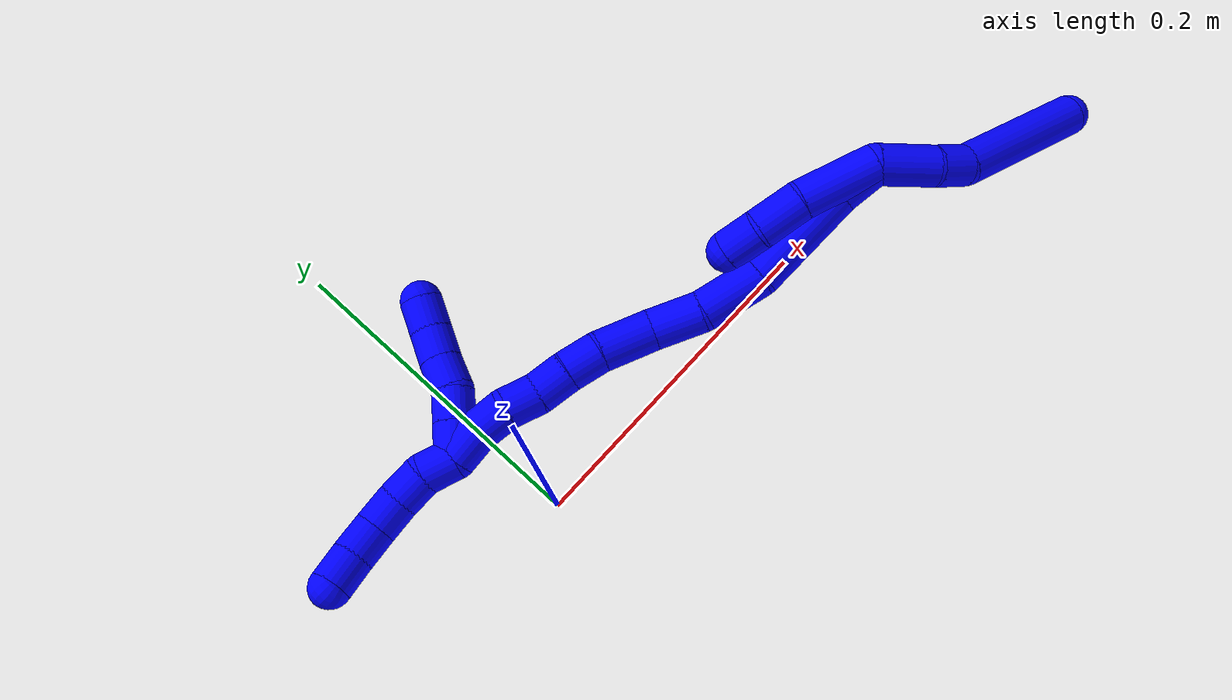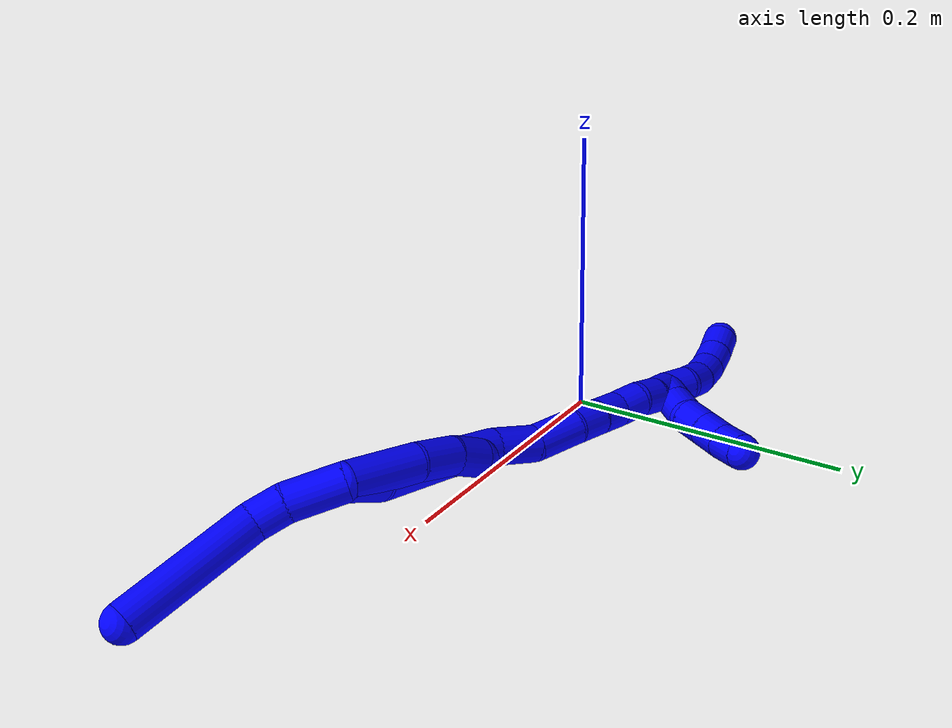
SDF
<sdf version="1.7">
 <world name="default">
  <model name="1">
   <static>0</static>
   <link name="1">
    <collision name="collision-cylinder-e_1_2_8">
     <pose>0.008578 -0.012638 0.010676 0.869338 0.478348 0.225463</pose>
     <geometry><cylinder><radius>0.0125</radius><length>0.037272</length></cylinder></geometry>
     <surface>
      <friction><ode><mu>1.16</mu><mu2>1.16</mu2><slip1>0</slip1><slip2>0</slip2></ode></friction>
      <contact><ode><kp>1e+06</kp><kd>1</kd><max_vel>0</max_vel><min_depth>0.001</min_depth></ode></contact>
     </surface>
    </collision>
    <visual name="visual-cylinder-e_1_2_8">
     <pose>0.008578 -0.012638 0.010676 0.869338 0.478348 0.225463</pose>
     <geometry><cylinder><radius>0.0125</radius><length>0.037272</length></cylinder></geometry>
     <material><ambient>0 0 1 1</ambient></material>
    </visual>
    <collision name="collision-cylinder-e_2_8_9">
     <pose>0.023897 -0.031507 0.027026 0.832198 0.674689 0.307548</pose>
     <geometry><cylinder><radius>0.0125</radius><length>0.021581</length></cylinder></geometry>
     <surface>
      <friction><ode><mu>1.16</mu><mu2>1.16</mu2><slip1>0</slip1><slip2>0</slip2></ode></friction>
      <contact><ode><kp>1e+06</kp><kd>1</kd><max_vel>0</max_vel><min_depth>0.001</min_depth></ode></contact>
     </surface>
    </collision>
    <visual name="visual-cylinder-e_2_8_9">
     <pose>0.023897 -0.031507 0.027026 0.832198 0.674689 0.307548</pose>
     <geometry><cylinder><radius>0.0125</radius><length>0.021581</length></cylinder></geometry>
     <material><ambient>0 0 1 1</ambient></material>
    </visual>
    <collision name="collision-cylinder-e_3_9_6">
     <pose>0.061929 -0.050255 0.063376 0.387422 0.75683 0.155671</pose>
     <geometry><cylinder><radius>0.0125</radius><length>0.091147</length></cylinder></geometry>
     <surface>
      <friction><ode><mu>1.16</mu><mu2>1.16</mu2><slip1>0</slip1><slip2>0</slip2></ode></friction>
      <contact><ode><kp>1e+06</kp><kd>1</kd><max_vel>0</max_vel><min_depth>0.001</min_depth></ode></contact>
     </surface>
    </collision>
    <visual name="visual-cylinder-e_3_9_6">
     <pose>0.061929 -0.050255 0.063376 0.387422 0.75683 0.155671</pose>
     <geometry><cylinder><radius>0.0125</radius><length>0.091147</length></cylinder></geometry>
     <material><ambient>0 0 1 1</ambient></material>
    </visual>
    <collision name="collision-cylinder-e_1_2_10">
     <pose>-0.008639 0.007843 -0.021275 -2.78839 -0.364004 1.60156</pose>
     <geometry><cylinder><radius>0.0125</radius><length>0.048529</length></cylinder></geometry>
     <surface>
      <friction><ode><mu>1.16</mu><mu2>1.16</mu2><slip1>0</slip1><slip2>0</slip2></ode></friction>
      <contact><ode><kp>1e+06</kp><kd>1</kd><max_vel>0</max_vel><min_depth>0.001</min_depth></ode></contact>
     </surface>
    </collision>
    <visual name="visual-cylinder-e_1_2_10">
     <pose>-0.008639 0.007843 -0.021275 -2.78839 -0.364004 1.60156</pose>
     <geometry><cylinder><radius>0.0125</radius><length>0.048529</length></cylinder></geometry>
     <material><ambient>0 0 1 1</ambient></material>
    </visual>
    <collision name="collision-cylinder-e_2_10_11">
     <pose>-0.021137 0.018476 -0.056361 -2.9423 -0.267412 1.86323</pose>
     <geometry><cylinder><radius>0.0125</radius><length>0.029217</length></cylinder></geometry>
     <surface>
      <friction><ode><mu>1.16</mu><mu2>1.16</mu2><slip1>0</slip1><slip2>0</slip2></ode></friction>
      <contact><ode><kp>1e+06</kp><kd>1</kd><max_vel>0</max_vel><min_depth>0.001</min_depth></ode></contact>
     </surface>
    </collision>
    <visual name="visual-cylinder-e_2_10_11">
     <pose>-0.021137 0.018476 -0.056361 -2.9423 -0.267412 1.86323</pose>
     <geometry><cylinder><radius>0.0125</radius><length>0.029217</length></cylinder></geometry>
     <material><ambient>0 0 1 1</ambient></material>
    </visual>
    <collision name="collision-cylinder-e_3_11_5">
     <pose>-0.025585 0.023534 -0.081048 -2.936 -0.052791 0.501107</pose>
     <geometry><cylinder><radius>0.0125</radius><length>0.022254</length></cylinder></geometry>
     <surface>
      <friction><ode><mu>1.16</mu><mu2>1.16</mu2><slip1>0</slip1><slip2>0</slip2></ode></friction>
      <contact><ode><kp>1e+06</kp><kd>1</kd><max_vel>0</max_vel><min_depth>0.001</min_depth></ode></contact>
     </surface>
    </collision>
    <visual name="visual-cylinder-e_3_11_5">
     <pose>-0.025585 0.023534 -0.081048 -2.936 -0.052791 0.501107</pose>
     <geometry><cylinder><radius>0.0125</radius><length>0.022254</length></cylinder></geometry>
     <material><ambient>0 0 1 1</ambient></material>
    </visual>
    <collision name="collision-cylinder-e_1_2_12">
     <pose>-0.00139 0.001599 -0.013249 -3.02148 -0.10378 1.42481</pose>
     <geometry><cylinder><radius>0.0125</radius><length>0.026835</length></cylinder></geometry>
     <surface>
      <friction><ode><mu>1.16</mu><mu2>1.16</mu2><slip1>0</slip1><slip2>0</slip2></ode></friction>
      <contact><ode><kp>1e+06</kp><kd>1</kd><max_vel>0</max_vel><min_depth>0.001</min_depth></ode></contact>
     </surface>
    </collision>
    <visual name="visual-cylinder-e_1_2_12">
     <pose>-0.00139 0.001599 -0.013249 -3.02148 -0.10378 1.42481</pose>
     <geometry><cylinder><radius>0.0125</radius><length>0.026835</length></cylinder></geometry>
     <material><ambient>0 0 1 1</ambient></material>
    </visual>
    <collision name="collision-cylinder-e_2_12_13">
     <pose>-0.012767 0.002751 -0.058053 3.12741 -0.306486 -3.04984</pose>
     <geometry><cylinder><radius>0.0125</radius><length>0.066202</length></cylinder></geometry>
     <surface>
      <friction><ode><mu>1.16</mu><mu2>1.16</mu2><slip1>0</slip1><slip2>0</slip2></ode></friction>
      <contact><ode><kp>1e+06</kp><kd>1</kd><max_vel>0</max_vel><min_depth>0.001</min_depth></ode></contact>
     </surface>
    </collision>
    <visual name="visual-cylinder-e_2_12_13">
     <pose>-0.012767 0.002751 -0.058053 3.12741 -0.306486 -3.04984</pose>
     <geometry><cylinder><radius>0.0125</radius><length>0.066202</length></cylinder></geometry>
     <material><ambient>0 0 1 1</ambient></material>
    </visual>
    <collision name="collision-cylinder-e_3_13_14">
     <pose>-0.029152 0.006927 -0.107502 -2.8887 -0.33326 1.84715</pose>
     <geometry><cylinder><radius>0.0125</radius><length>0.039115</length></cylinder></geometry>
     <surface>
      <friction><ode><mu>1.16</mu><mu2>1.16</mu2><slip1>0</slip1><slip2>0</slip2></ode></friction>
      <contact><ode><kp>1e+06</kp><kd>1</kd><max_vel>0</max_vel><min_depth>0.001</min_depth></ode></contact>
     </surface>
    </collision>
    <visual name="visual-cylinder-e_3_13_14">
     <pose>-0.029152 0.006927 -0.107502 -2.8887 -0.33326 1.84715</pose>
     <geometry><cylinder><radius>0.0125</radius><length>0.039115</length></cylinder></geometry>
     <material><ambient>0 0 1 1</ambient></material>
    </visual>
    <collision name="collision-cylinder-e_4_14_15">
     <pose>-0.038846 0.018278 -0.139195 -2.68803 -0.211567 0.862526</pose>
     <geometry><cylinder><radius>0.0125</radius><length>0.031401</length></cylinder></geometry>
     <surface>
      <friction><ode><mu>1.16</mu><mu2>1.16</mu2><slip1>0</slip1><slip2>0</slip2></ode></friction>
      <contact><ode><kp>1e+06</kp><kd>1</kd><max_vel>0</max_vel><min_depth>0.001</min_depth></ode></contact>
     </surface>
    </collision>
    <visual name="visual-cylinder-e_4_14_15">
     <pose>-0.038846 0.018278 -0.139195 -2.68803 -0.211567 0.862526</pose>
     <geometry><cylinder><radius>0.0125</radius><length>0.031401</length></cylinder></geometry>
     <material><ambient>0 0 1 1</ambient></material>
    </visual>
    <collision name="collision-cylinder-e_5_15_16">
     <pose>-0.050197 0.031234 -0.16648 -2.70885 -0.496746 1.71332</pose>
     <geometry><cylinder><radius>0.0125</radius><length>0.033798</length></cylinder></geometry>
     <surface>
      <friction><ode><mu>1.16</mu><mu2>1.16</mu2><slip1>0</slip1><slip2>0</slip2></ode></friction>
      <contact><ode><kp>1e+06</kp><kd>1</kd><max_vel>0</max_vel><min_depth>0.001</min_depth></ode></contact>
     </surface>
    </collision>
    <visual name="visual-cylinder-e_5_15_16">
     <pose>-0.050197 0.031234 -0.16648 -2.70885 -0.496746 1.71332</pose>
     <geometry><cylinder><radius>0.0125</radius><length>0.033798</length></cylinder></geometry>
     <material><ambient>0 0 1 1</ambient></material>
    </visual>
    <collision name="collision-cylinder-e_6_16_17">
     <pose>-0.062778 0.03996 -0.189446 -2.88418 -0.432695 2.07724</pose>
     <geometry><cylinder><radius>0.0125</radius><length>0.021594</length></cylinder></geometry>
     <surface>
      <friction><ode><mu>1.16</mu><mu2>1.16</mu2><slip1>0</slip1><slip2>0</slip2></ode></friction>
      <contact><ode><kp>1e+06</kp><kd>1</kd><max_vel>0</max_vel><min_depth>0.001</min_depth></ode></contact>
     </surface>
    </collision>
    <visual name="visual-cylinder-e_6_16_17">
     <pose>-0.062778 0.03996 -0.189446 -2.88418 -0.432695 2.07724</pose>
     <geometry><cylinder><radius>0.0125</radius><length>0.021594</length></cylinder></geometry>
     <material><ambient>0 0 1 1</ambient></material>
    </visual>
    <collision name="collision-cylinder-e_7_17_18">
     <pose>-0.071358 0.043991 -0.20851 -2.98268 -0.395484 2.38505</pose>
     <geometry><cylinder><radius>0.0125</radius><length>0.02104</length></cylinder></geometry>
     <surface>
      <friction><ode><mu>1.16</mu><mu2>1.16</mu2><slip1>0</slip1><slip2>0</slip2></ode></friction>
      <contact><ode><kp>1e+06</kp><kd>1</kd><max_vel>0</max_vel><min_depth>0.001</min_depth></ode></contact>
     </surface>
    </collision>
    <visual name="visual-cylinder-e_7_17_18">
     <pose>-0.071358 0.043991 -0.20851 -2.98268 -0.395484 2.38505</pose>
     <geometry><cylinder><radius>0.0125</radius><length>0.02104</length></cylinder></geometry>
     <material><ambient>0 0 1 1</ambient></material>
    </visual>
    <collision name="collision-cylinder-e_8_18_19">
     <pose>-0.080274 0.048716 -0.226239 -2.76839 -0.507521 1.88311</pose>
     <geometry><cylinder><radius>0.0125</radius><length>0.020012</length></cylinder></geometry>
     <surface>
      <friction><ode><mu>1.16</mu><mu2>1.16</mu2><slip1>0</slip1><slip2>0</slip2></ode></friction>
      <contact><ode><kp>1e+06</kp><kd>1</kd><max_vel>0</max_vel><min_depth>0.001</min_depth></ode></contact>
     </surface>
    </collision>
    <visual name="visual-cylinder-e_8_18_19">
     <pose>-0.080274 0.048716 -0.226239 -2.76839 -0.507521 1.88311</pose>
     <geometry><cylinder><radius>0.0125</radius><length>0.020012</length></cylinder></geometry>
     <material><ambient>0 0 1 1</ambient></material>
    </visual>
    <collision name="collision-cylinder-e_9_19_20">
     <pose>-0.088116 0.053129 -0.24385 -3.01292 -0.302498 2.34174</pose>
     <geometry><cylinder><radius>0.0125</radius><length>0.020003</length></cylinder></geometry>
     <surface>
      <friction><ode><mu>1.16</mu><mu2>1.16</mu2><slip1>0</slip1><slip2>0</slip2></ode></friction>
      <contact><ode><kp>1e+06</kp><kd>1</kd><max_vel>0</max_vel><min_depth>0.001</min_depth></ode></contact>
     </surface>
    </collision>
    <visual name="visual-cylinder-e_9_19_20">
     <pose>-0.088116 0.053129 -0.24385 -3.01292 -0.302498 2.34174</pose>
     <geometry><cylinder><radius>0.0125</radius><length>0.020003</length></cylinder></geometry>
     <material><ambient>0 0 1 1</ambient></material>
    </visual>
    <collision name="collision-cylinder-e_10_20_1">
     <pose>-0.094437 0.05347 -0.262702 3.04765 -0.340691 -2.60809</pose>
     <geometry><cylinder><radius>0.0125</radius><length>0.02</length></cylinder></geometry>
     <surface>
      <friction><ode><mu>1.16</mu><mu2>1.16</mu2><slip1>0</slip1><slip2>0</slip2></ode></friction>
      <contact><ode><kp>1e+06</kp><kd>1</kd><max_vel>0</max_vel><min_depth>0.001</min_depth></ode></contact>
     </surface>
    </collision>
    <visual name="visual-cylinder-e_10_20_1">
     <pose>-0.094437 0.05347 -0.262702 3.04765 -0.340691 -2.60809</pose>
     <geometry><cylinder><radius>0.0125</radius><length>0.02</length></cylinder></geometry>
     <material><ambient>0 0 1 1</ambient></material>
    </visual>
    <collision name="collision-cylinder-e_1_1_21">
     <pose>-0.10145 0.055727 -0.280842 -2.79714 -0.375902 1.65997</pose>
     <geometry><cylinder><radius>0.0125</radius><length>0.02</length></cylinder></geometry>
     <surface>
      <friction><ode><mu>1.16</mu><mu2>1.16</mu2><slip1>0</slip1><slip2>0</slip2></ode></friction>
      <contact><ode><kp>1e+06</kp><kd>1</kd><max_vel>0</max_vel><min_depth>0.001</min_depth></ode></contact>
     </surface>
    </collision>
    <visual name="visual-cylinder-e_1_1_21">
     <pose>-0.10145 0.055727 -0.280842 -2.79714 -0.375902 1.65997</pose>
     <geometry><cylinder><radius>0.0125</radius><length>0.02</length></cylinder></geometry>
     <material><ambient>0 0 1 1</ambient></material>
    </visual>
    <collision name="collision-cylinder-e_2_21_22">
     <pose>-0.108591 0.058739 -0.298975 3.12776 -0.35438 -3.06439</pose>
     <geometry><cylinder><radius>0.0125</radius><length>0.02</length></cylinder></geometry>
     <surface>
      <friction><ode><mu>1.16</mu><mu2>1.16</mu2><slip1>0</slip1><slip2>0</slip2></ode></friction>
      <contact><ode><kp>1e+06</kp><kd>1</kd><max_vel>0</max_vel><min_depth>0.001</min_depth></ode></contact>
     </surface>
    </collision>
    <visual name="visual-cylinder-e_2_21_22">
     <pose>-0.108591 0.058739 -0.298975 3.12776 -0.35438 -3.06439</pose>
     <geometry><cylinder><radius>0.0125</radius><length>0.02</length></cylinder></geometry>
     <material><ambient>0 0 1 1</ambient></material>
    </visual>
    <collision name="collision-cylinder-e_3_22_23">
     <pose>-0.117274 0.057457 -0.316808 3.00624 -0.548414 -2.66869</pose>
     <geometry><cylinder><radius>0.0125</radius><length>0.02</length></cylinder></geometry>
     <surface>
      <friction><ode><mu>1.16</mu><mu2>1.16</mu2><slip1>0</slip1><slip2>0</slip2></ode></friction>
      <contact><ode><kp>1e+06</kp><kd>1</kd><max_vel>0</max_vel><min_depth>0.001</min_depth></ode></contact>
     </surface>
    </collision>
    <visual name="visual-cylinder-e_3_22_23">
     <pose>-0.117274 0.057457 -0.316808 3.00624 -0.548414 -2.66869</pose>
     <geometry><cylinder><radius>0.0125</radius><length>0.02</length></cylinder></geometry>
     <material><ambient>0 0 1 1</ambient></material>
    </visual>
    <collision name="collision-cylinder-e_4_23_24">
     <pose>-0.128963 0.054811 -0.332736 2.94414 -0.704314 -2.61503</pose>
     <geometry><cylinder><radius>0.0125</radius><length>0.02</length></cylinder></geometry>
     <surface>
      <friction><ode><mu>1.16</mu><mu2>1.16</mu2><slip1>0</slip1><slip2>0</slip2></ode></friction>
      <contact><ode><kp>1e+06</kp><kd>1</kd><max_vel>0</max_vel><min_depth>0.001</min_depth></ode></contact>
     </surface>
    </collision>
    <visual name="visual-cylinder-e_4_23_24">
     <pose>-0.128963 0.054811 -0.332736 2.94414 -0.704314 -2.61503</pose>
     <geometry><cylinder><radius>0.0125</radius><length>0.02</length></cylinder></geometry>
     <material><ambient>0 0 1 1</ambient></material>
    </visual>
    <collision name="collision-cylinder-e_5_24_4">
     <pose>-0.142505 0.051451 -0.347033 2.8748 -0.784792 -2.51449</pose>
     <geometry><cylinder><radius>0.0125</radius><length>0.02</length></cylinder></geometry>
     <surface>
      <friction><ode><mu>1.16</mu><mu2>1.16</mu2><slip1>0</slip1><slip2>0</slip2></ode></friction>
      <contact><ode><kp>1e+06</kp><kd>1</kd><max_vel>0</max_vel><min_depth>0.001</min_depth></ode></contact>
     </surface>
    </collision>
    <visual name="visual-cylinder-e_5_24_4">
     <pose>-0.142505 0.051451 -0.347033 2.8748 -0.784792 -2.51449</pose>
     <geometry><cylinder><radius>0.0125</radius><length>0.02</length></cylinder></geometry>
     <material><ambient>0 0 1 1</ambient></material>
    </visual>
    <collision name="collision-cylinder-e_1_1_25">
     <pose>-0.092956 0.059907 -0.267274 -0.989307 0.503245 -0.275561</pose>
     <geometry><cylinder><radius>0.0125</radius><length>0.02</length></cylinder></geometry>
     <surface>
      <friction><ode><mu>1.16</mu><mu2>1.16</mu2><slip1>0</slip1><slip2>0</slip2></ode></friction>
      <contact><ode><kp>1e+06</kp><kd>1</kd><max_vel>0</max_vel><min_depth>0.001</min_depth></ode></contact>
     </surface>
    </collision>
    <visual name="visual-cylinder-e_1_1_25">
     <pose>-0.092956 0.059907 -0.267274 -0.989307 0.503245 -0.275561</pose>
     <geometry><cylinder><radius>0.0125</radius><length>0.02</length></cylinder></geometry>
     <material><ambient>0 0 1 1</ambient></material>
    </visual>
    <collision name="collision-cylinder-e_2_25_26">
     <pose>-0.083412 0.074652 -0.25771 -1.00136 0.491652 -0.272874</pose>
     <geometry><cylinder><radius>0.0125</radius><length>0.02</length></cylinder></geometry>
     <surface>
      <friction><ode><mu>1.16</mu><mu2>1.16</mu2><slip1>0</slip1><slip2>0</slip2></ode></friction>
      <contact><ode><kp>1e+06</kp><kd>1</kd><max_vel>0</max_vel><min_depth>0.001</min_depth></ode></contact>
     </surface>
    </collision>
    <visual name="visual-cylinder-e_2_25_26">
     <pose>-0.083412 0.074652 -0.25771 -1.00136 0.491652 -0.272874</pose>
     <geometry><cylinder><radius>0.0125</radius><length>0.02</length></cylinder></geometry>
     <material><ambient>0 0 1 1</ambient></material>
    </visual>
    <collision name="collision-cylinder-e_3_26_27">
     <pose>-0.074568 0.090993 -0.25109 -1.36444 0.425049 -0.347051</pose>
     <geometry><cylinder><radius>0.0125</radius><length>0.02</length></cylinder></geometry>
     <surface>
      <friction><ode><mu>1.16</mu><mu2>1.16</mu2><slip1>0</slip1><slip2>0</slip2></ode></friction>
      <contact><ode><kp>1e+06</kp><kd>1</kd><max_vel>0</max_vel><min_depth>0.001</min_depth></ode></contact>
     </surface>
    </collision>
    <visual name="visual-cylinder-e_3_26_27">
     <pose>-0.074568 0.090993 -0.25109 -1.36444 0.425049 -0.347051</pose>
     <geometry><cylinder><radius>0.0125</radius><length>0.02</length></cylinder></geometry>
     <material><ambient>0 0 1 1</ambient></material>
    </visual>
    <collision name="collision-cylinder-e_4_27_28">
     <pose>-0.066533 0.108685 -0.246449 -1.26461 0.401882 -0.29628</pose>
     <geometry><cylinder><radius>0.0125</radius><length>0.02</length></cylinder></geometry>
     <surface>
      <friction><ode><mu>1.16</mu><mu2>1.16</mu2><slip1>0</slip1><slip2>0</slip2></ode></friction>
      <contact><ode><kp>1e+06</kp><kd>1</kd><max_vel>0</max_vel><min_depth>0.001</min_depth></ode></contact>
     </surface>
    </collision>
    <visual name="visual-cylinder-e_4_27_28">
     <pose>-0.066533 0.108685 -0.246449 -1.26461 0.401882 -0.29628</pose>
     <geometry><cylinder><radius>0.0125</radius><length>0.02</length></cylinder></geometry>
     <material><ambient>0 0 1 1</ambient></material>
    </visual>
    <collision name="collision-cylinder-e_5_28_3">
     <pose>-0.059553 0.126393 -0.240389 -1.21826 0.311876 -0.218481</pose>
     <geometry><cylinder><radius>0.0125</radius><length>0.02</length></cylinder></geometry>
     <surface>
      <friction><ode><mu>1.16</mu><mu2>1.16</mu2><slip1>0</slip1><slip2>0</slip2></ode></friction>
      <contact><ode><kp>1e+06</kp><kd>1</kd><max_vel>0</max_vel><min_depth>0.001</min_depth></ode></contact>
     </surface>
    </collision>
    <visual name="visual-cylinder-e_5_28_3">
     <pose>-0.059553 0.126393 -0.240389 -1.21826 0.311876 -0.218481</pose>
     <geometry><cylinder><radius>0.0125</radius><length>0.02</length></cylinder></geometry>
     <material><ambient>0 0 1 1</ambient></material>
    </visual>
    <collision name="collision-sphere-3">
     <pose>-0.056484 0.135325 -0.237103 0 -0 0</pose>
     <geometry><sphere><radius>0.0125</radius></sphere></geometry>
     <surface>
      <friction><ode><mu>1.16</mu><mu2>1.16</mu2><slip1>0</slip1><slip2>0</slip2></ode></friction>
      <contact><ode><kp>1e+06</kp><kd>1</kd><max_vel>0</max_vel><min_depth>0.001</min_depth></ode></contact>
     </surface>
    </collision>
    <visual name="visual-sphere-3">
     <pose>-0.056484 0.135325 -0.237103 0 -0 0</pose>
     <geometry><sphere><radius>0.0125</radius></sphere></geometry>
     <material><ambient>0 0 1 1</ambient></material>
    </visual>
    <collision name="collision-sphere-28">
     <pose>-0.062621 0.11746 -0.243675 0 -0 0</pose>
     <geometry><sphere><radius>0.0125</radius></sphere></geometry>
     <surface>
      <friction><ode><mu>1.16</mu><mu2>1.16</mu2><slip1>0</slip1><slip2>0</slip2></ode></friction>
      <contact><ode><kp>1e+06</kp><kd>1</kd><max_vel>0</max_vel><min_depth>0.001</min_depth></ode></contact>
     </surface>
    </collision>
    <visual name="visual-sphere-28">
     <pose>-0.062621 0.11746 -0.243675 0 -0 0</pose>
     <geometry><sphere><radius>0.0125</radius></sphere></geometry>
     <material><ambient>0 0 1 1</ambient></material>
    </visual>
    <collision name="collision-sphere-27">
     <pose>-0.070444 0.09991 -0.249223 0 -0 0</pose>
     <geometry><sphere><radius>0.0125</radius></sphere></geometry>
     <surface>
      <friction><ode><mu>1.16</mu><mu2>1.16</mu2><slip1>0</slip1><slip2>0</slip2></ode></friction>
      <contact><ode><kp>1e+06</kp><kd>1</kd><max_vel>0</max_vel><min_depth>0.001</min_depth></ode></contact>
     </surface>
    </collision>
    <visual name="visual-sphere-27">
     <pose>-0.070444 0.09991 -0.249223 0 -0 0</pose>
     <geometry><sphere><radius>0.0125</radius></sphere></geometry>
     <material><ambient>0 0 1 1</ambient></material>
    </visual>
    <collision name="collision-sphere-26">
     <pose>-0.078692 0.082076 -0.252957 0 -0 0</pose>
     <geometry><sphere><radius>0.0125</radius></sphere></geometry>
     <surface>
      <friction><ode><mu>1.16</mu><mu2>1.16</mu2><slip1>0</slip1><slip2>0</slip2></ode></friction>
      <contact><ode><kp>1e+06</kp><kd>1</kd><max_vel>0</max_vel><min_depth>0.001</min_depth></ode></contact>
     </surface>
    </collision>
    <visual name="visual-sphere-26">
     <pose>-0.078692 0.082076 -0.252957 0 -0 0</pose>
     <geometry><sphere><radius>0.0125</radius></sphere></geometry>
     <material><ambient>0 0 1 1</ambient></material>
    </visual>
    <collision name="collision-sphere-25">
     <pose>-0.088133 0.067227 -0.262463 0 -0 0</pose>
     <geometry><sphere><radius>0.0125</radius></sphere></geometry>
     <surface>
      <friction><ode><mu>1.16</mu><mu2>1.16</mu2><slip1>0</slip1><slip2>0</slip2></ode></friction>
      <contact><ode><kp>1e+06</kp><kd>1</kd><max_vel>0</max_vel><min_depth>0.001</min_depth></ode></contact>
     </surface>
    </collision>
    <visual name="visual-sphere-25">
     <pose>-0.088133 0.067227 -0.262463 0 -0 0</pose>
     <geometry><sphere><radius>0.0125</radius></sphere></geometry>
     <material><ambient>0 0 1 1</ambient></material>
    </visual>
    <collision name="collision-sphere-4">
     <pose>-0.149572 0.049585 -0.353858 0 -0 0</pose>
     <geometry><sphere><radius>0.0125</radius></sphere></geometry>
     <surface>
      <friction><ode><mu>1.16</mu><mu2>1.16</mu2><slip1>0</slip1><slip2>0</slip2></ode></friction>
      <contact><ode><kp>1e+06</kp><kd>1</kd><max_vel>0</max_vel><min_depth>0.001</min_depth></ode></contact>
     </surface>
    </collision>
    <visual name="visual-sphere-4">
     <pose>-0.149572 0.049585 -0.353858 0 -0 0</pose>
     <geometry><sphere><radius>0.0125</radius></sphere></geometry>
     <material><ambient>0 0 1 1</ambient></material>
    </visual>
    <collision name="collision-sphere-24">
     <pose>-0.135438 0.053316 -0.340208 0 -0 0</pose>
     <geometry><sphere><radius>0.0125</radius></sphere></geometry>
     <surface>
      <friction><ode><mu>1.16</mu><mu2>1.16</mu2><slip1>0</slip1><slip2>0</slip2></ode></friction>
      <contact><ode><kp>1e+06</kp><kd>1</kd><max_vel>0</max_vel><min_depth>0.001</min_depth></ode></contact>
     </surface>
    </collision>
    <visual name="visual-sphere-24">
     <pose>-0.135438 0.053316 -0.340208 0 -0 0</pose>
     <geometry><sphere><radius>0.0125</radius></sphere></geometry>
     <material><ambient>0 0 1 1</ambient></material>
    </visual>
    <collision name="collision-sphere-23">
     <pose>-0.122488 0.056306 -0.325263 0 -0 0</pose>
     <geometry><sphere><radius>0.0125</radius></sphere></geometry>
     <surface>
      <friction><ode><mu>1.16</mu><mu2>1.16</mu2><slip1>0</slip1><slip2>0</slip2></ode></friction>
      <contact><ode><kp>1e+06</kp><kd>1</kd><max_vel>0</max_vel><min_depth>0.001</min_depth></ode></contact>
     </surface>
    </collision>
    <visual name="visual-sphere-23">
     <pose>-0.122488 0.056306 -0.325263 0 -0 0</pose>
     <geometry><sphere><radius>0.0125</radius></sphere></geometry>
     <material><ambient>0 0 1 1</ambient></material>
    </visual>
    <collision name="collision-sphere-22">
     <pose>-0.112061 0.058609 -0.308352 0 -0 0</pose>
     <geometry><sphere><radius>0.0125</radius></sphere></geometry>
     <surface>
      <friction><ode><mu>1.16</mu><mu2>1.16</mu2><slip1>0</slip1><slip2>0</slip2></ode></friction>
      <contact><ode><kp>1e+06</kp><kd>1</kd><max_vel>0</max_vel><min_depth>0.001</min_depth></ode></contact>
     </surface>
    </collision>
    <visual name="visual-sphere-22">
     <pose>-0.112061 0.058609 -0.308352 0 -0 0</pose>
     <geometry><sphere><radius>0.0125</radius></sphere></geometry>
     <material><ambient>0 0 1 1</ambient></material>
    </visual>
    <collision name="collision-sphere-21">
     <pose>-0.105121 0.058868 -0.289597 0 -0 0</pose>
     <geometry><sphere><radius>0.0125</radius></sphere></geometry>
     <surface>
      <friction><ode><mu>1.16</mu><mu2>1.16</mu2><slip1>0</slip1><slip2>0</slip2></ode></friction>
      <contact><ode><kp>1e+06</kp><kd>1</kd><max_vel>0</max_vel><min_depth>0.001</min_depth></ode></contact>
     </surface>
    </collision>
    <visual name="visual-sphere-21">
     <pose>-0.105121 0.058868 -0.289597 0 -0 0</pose>
     <geometry><sphere><radius>0.0125</radius></sphere></geometry>
     <material><ambient>0 0 1 1</ambient></material>
    </visual>
    <collision name="collision-sphere-1">
     <pose>-0.097779 0.052586 -0.272086 0 -0 0</pose>
     <geometry><sphere><radius>0.0125</radius></sphere></geometry>
     <surface>
      <friction><ode><mu>1.16</mu><mu2>1.16</mu2><slip1>0</slip1><slip2>0</slip2></ode></friction>
      <contact><ode><kp>1e+06</kp><kd>1</kd><max_vel>0</max_vel><min_depth>0.001</min_depth></ode></contact>
     </surface>
    </collision>
    <visual name="visual-sphere-1">
     <pose>-0.097779 0.052586 -0.272086 0 -0 0</pose>
     <geometry><sphere><radius>0.0125</radius></sphere></geometry>
     <material><ambient>0 0 1 1</ambient></material>
    </visual>
    <collision name="collision-sphere-11">
     <pose>-0.024998 0.021265 -0.070171 0 -0 0</pose>
     <geometry><sphere><radius>0.0125</radius></sphere></geometry>
     <surface>
      <friction><ode><mu>1.16</mu><mu2>1.16</mu2><slip1>0</slip1><slip2>0</slip2></ode></friction>
      <contact><ode><kp>1e+06</kp><kd>1</kd><max_vel>0</max_vel><min_depth>0.001</min_depth></ode></contact>
     </surface>
    </collision>
    <visual name="visual-sphere-11">
     <pose>-0.024998 0.021265 -0.070171 0 -0 0</pose>
     <geometry><sphere><radius>0.0125</radius></sphere></geometry>
     <material><ambient>0 0 1 1</ambient></material>
    </visual>
    <collision name="collision-sphere-10">
     <pose>-0.017277 0.015687 -0.04255 0 -0 0</pose>
     <geometry><sphere><radius>0.0125</radius></sphere></geometry>
     <surface>
      <friction><ode><mu>1.16</mu><mu2>1.16</mu2><slip1>0</slip1><slip2>0</slip2></ode></friction>
      <contact><ode><kp>1e+06</kp><kd>1</kd><max_vel>0</max_vel><min_depth>0.001</min_depth></ode></contact>
     </surface>
    </collision>
    <visual name="visual-sphere-10">
     <pose>-0.017277 0.015687 -0.04255 0 -0 0</pose>
     <geometry><sphere><radius>0.0125</radius></sphere></geometry>
     <material><ambient>0 0 1 1</ambient></material>
    </visual>
    <collision name="collision-sphere-6">
     <pose>0.093221 -0.062773 0.094053 0 -0 0</pose>
     <geometry><sphere><radius>0.0125</radius></sphere></geometry>
     <surface>
      <friction><ode><mu>1.16</mu><mu2>1.16</mu2><slip1>0</slip1><slip2>0</slip2></ode></friction>
      <contact><ode><kp>1e+06</kp><kd>1</kd><max_vel>0</max_vel><min_depth>0.001</min_depth></ode></contact>
     </surface>
    </collision>
    <visual name="visual-sphere-6">
     <pose>0.093221 -0.062773 0.094053 0 -0 0</pose>
     <geometry><sphere><radius>0.0125</radius></sphere></geometry>
     <material><ambient>0 0 1 1</ambient></material>
    </visual>
    <collision name="collision-sphere-9">
     <pose>0.030638 -0.037737 0.032699 0 -0 0</pose>
     <geometry><sphere><radius>0.0125</radius></sphere></geometry>
     <surface>
      <friction><ode><mu>1.16</mu><mu2>1.16</mu2><slip1>0</slip1><slip2>0</slip2></ode></friction>
      <contact><ode><kp>1e+06</kp><kd>1</kd><max_vel>0</max_vel><min_depth>0.001</min_depth></ode></contact>
     </surface>
    </collision>
    <visual name="visual-sphere-9">
     <pose>0.030638 -0.037737 0.032699 0 -0 0</pose>
     <geometry><sphere><radius>0.0125</radius></sphere></geometry>
     <material><ambient>0 0 1 1</ambient></material>
    </visual>
    <collision name="collision-sphere-2">
     <geometry><sphere><radius>0.0125</radius></sphere></geometry>
     <surface>
      <friction><ode><mu>1.16</mu><mu2>1.16</mu2><slip1>0</slip1><slip2>0</slip2></ode></friction>
      <contact><ode><kp>1e+06</kp><kd>1</kd><max_vel>0</max_vel><min_depth>0.001</min_depth></ode></contact>
     </surface>
    </collision>
    <visual name="visual-sphere-2">
     <geometry><sphere><radius>0.0125</radius></sphere></geometry>
     <material><ambient>0 0 1 1</ambient></material>
    </visual>
    <collision name="collision-sphere-19">
     <pose>-0.085137 0.051904 -0.234382 0 -0 0</pose>
     <geometry><sphere><radius>0.0125</radius></sphere></geometry>
     <surface>
      <friction><ode><mu>1.16</mu><mu2>1.16</mu2><slip1>0</slip1><slip2>0</slip2></ode></friction>
      <contact><ode><kp>1e+06</kp><kd>1</kd><max_vel>0</max_vel><min_depth>0.001</min_depth></ode></contact>
     </surface>
    </collision>
    <visual name="visual-sphere-19">
     <pose>-0.085137 0.051904 -0.234382 0 -0 0</pose>
     <geometry><sphere><radius>0.0125</radius></sphere></geometry>
     <material><ambient>0 0 1 1</ambient></material>
    </visual>
    <collision name="collision-sphere-8">
     <pose>0.017157 -0.025276 0.021353 0 -0 0</pose>
     <geometry><sphere><radius>0.0125</radius></sphere></geometry>
     <surface>
      <friction><ode><mu>1.16</mu><mu2>1.16</mu2><slip1>0</slip1><slip2>0</slip2></ode></friction>
      <contact><ode><kp>1e+06</kp><kd>1</kd><max_vel>0</max_vel><min_depth>0.001</min_depth></ode></contact>
     </surface>
    </collision>
    <visual name="visual-sphere-8">
     <pose>0.017157 -0.025276 0.021353 0 -0 0</pose>
     <geometry><sphere><radius>0.0125</radius></sphere></geometry>
     <material><ambient>0 0 1 1</ambient></material>
    </visual>
    <collision name="collision-sphere-5">
     <pose>-0.026172 0.025802 -0.091926 0 -0 0</pose>
     <geometry><sphere><radius>0.0125</radius></sphere></geometry>
     <surface>
      <friction><ode><mu>1.16</mu><mu2>1.16</mu2><slip1>0</slip1><slip2>0</slip2></ode></friction>
      <contact><ode><kp>1e+06</kp><kd>1</kd><max_vel>0</max_vel><min_depth>0.001</min_depth></ode></contact>
     </surface>
    </collision>
    <visual name="visual-sphere-5">
     <pose>-0.026172 0.025802 -0.091926 0 -0 0</pose>
     <geometry><sphere><radius>0.0125</radius></sphere></geometry>
     <material><ambient>0 0 1 1</ambient></material>
    </visual>
    <collision name="collision-sphere-12">
     <pose>-0.00278 0.003198 -0.026498 0 -0 0</pose>
     <geometry><sphere><radius>0.0125</radius></sphere></geometry>
     <surface>
      <friction><ode><mu>1.16</mu><mu2>1.16</mu2><slip1>0</slip1><slip2>0</slip2></ode></friction>
      <contact><ode><kp>1e+06</kp><kd>1</kd><max_vel>0</max_vel><min_depth>0.001</min_depth></ode></contact>
     </surface>
    </collision>
    <visual name="visual-sphere-12">
     <pose>-0.00278 0.003198 -0.026498 0 -0 0</pose>
     <geometry><sphere><radius>0.0125</radius></sphere></geometry>
     <material><ambient>0 0 1 1</ambient></material>
    </visual>
    <collision name="collision-sphere-13">
     <pose>-0.022754 0.002303 -0.089609 0 -0 0</pose>
     <geometry><sphere><radius>0.0125</radius></sphere></geometry>
     <surface>
      <friction><ode><mu>1.16</mu><mu2>1.16</mu2><slip1>0</slip1><slip2>0</slip2></ode></friction>
      <contact><ode><kp>1e+06</kp><kd>1</kd><max_vel>0</max_vel><min_depth>0.001</min_depth></ode></contact>
     </surface>
    </collision>
    <visual name="visual-sphere-13">
     <pose>-0.022754 0.002303 -0.089609 0 -0 0</pose>
     <geometry><sphere><radius>0.0125</radius></sphere></geometry>
     <material><ambient>0 0 1 1</ambient></material>
    </visual>
    <collision name="collision-sphere-14">
     <pose>-0.035549 0.011551 -0.125396 0 -0 0</pose>
     <geometry><sphere><radius>0.0125</radius></sphere></geometry>
     <surface>
      <friction><ode><mu>1.16</mu><mu2>1.16</mu2><slip1>0</slip1><slip2>0</slip2></ode></friction>
      <contact><ode><kp>1e+06</kp><kd>1</kd><max_vel>0</max_vel><min_depth>0.001</min_depth></ode></contact>
     </surface>
    </collision>
    <visual name="visual-sphere-14">
     <pose>-0.035549 0.011551 -0.125396 0 -0 0</pose>
     <geometry><sphere><radius>0.0125</radius></sphere></geometry>
     <material><ambient>0 0 1 1</ambient></material>
    </visual>
    <collision name="collision-sphere-15">
     <pose>-0.042143 0.025004 -0.152993 0 -0 0</pose>
     <geometry><sphere><radius>0.0125</radius></sphere></geometry>
     <surface>
      <friction><ode><mu>1.16</mu><mu2>1.16</mu2><slip1>0</slip1><slip2>0</slip2></ode></friction>
      <contact><ode><kp>1e+06</kp><kd>1</kd><max_vel>0</max_vel><min_depth>0.001</min_depth></ode></contact>
     </surface>
    </collision>
    <visual name="visual-sphere-15">
     <pose>-0.042143 0.025004 -0.152993 0 -0 0</pose>
     <geometry><sphere><radius>0.0125</radius></sphere></geometry>
     <material><ambient>0 0 1 1</ambient></material>
    </visual>
    <collision name="collision-sphere-16">
     <pose>-0.05825 0.037464 -0.179967 0 -0 0</pose>
     <geometry><sphere><radius>0.0125</radius></sphere></geometry>
     <surface>
      <friction><ode><mu>1.16</mu><mu2>1.16</mu2><slip1>0</slip1><slip2>0</slip2></ode></friction>
      <contact><ode><kp>1e+06</kp><kd>1</kd><max_vel>0</max_vel><min_depth>0.001</min_depth></ode></contact>
     </surface>
    </collision>
    <visual name="visual-sphere-16">
     <pose>-0.05825 0.037464 -0.179967 0 -0 0</pose>
     <geometry><sphere><radius>0.0125</radius></sphere></geometry>
     <material><ambient>0 0 1 1</ambient></material>
    </visual>
    <collision name="collision-sphere-17">
     <pose>-0.067305 0.042455 -0.198925 0 -0 0</pose>
     <geometry><sphere><radius>0.0125</radius></sphere></geometry>
     <surface>
      <friction><ode><mu>1.16</mu><mu2>1.16</mu2><slip1>0</slip1><slip2>0</slip2></ode></friction>
      <contact><ode><kp>1e+06</kp><kd>1</kd><max_vel>0</max_vel><min_depth>0.001</min_depth></ode></contact>
     </surface>
    </collision>
    <visual name="visual-sphere-17">
     <pose>-0.067305 0.042455 -0.198925 0 -0 0</pose>
     <geometry><sphere><radius>0.0125</radius></sphere></geometry>
     <material><ambient>0 0 1 1</ambient></material>
    </visual>
    <collision name="collision-sphere-18">
     <pose>-0.075411 0.045528 -0.218096 0 -0 0</pose>
     <geometry><sphere><radius>0.0125</radius></sphere></geometry>
     <surface>
      <friction><ode><mu>1.16</mu><mu2>1.16</mu2><slip1>0</slip1><slip2>0</slip2></ode></friction>
      <contact><ode><kp>1e+06</kp><kd>1</kd><max_vel>0</max_vel><min_depth>0.001</min_depth></ode></contact>
     </surface>
    </collision>
    <visual name="visual-sphere-18">
     <pose>-0.075411 0.045528 -0.218096 0 -0 0</pose>
     <geometry><sphere><radius>0.0125</radius></sphere></geometry>
     <material><ambient>0 0 1 1</ambient></material>
    </visual>
    <collision name="collision-sphere-20">
     <pose>-0.091096 0.054354 -0.253319 0 -0 0</pose>
     <geometry><sphere><radius>0.0125</radius></sphere></geometry>
     <surface>
      <friction><ode><mu>1.16</mu><mu2>1.16</mu2><slip1>0</slip1><slip2>0</slip2></ode></friction>
      <contact><ode><kp>1e+06</kp><kd>1</kd><max_vel>0</max_vel><min_depth>0.001</min_depth></ode></contact>
     </surface>
    </collision>
    <visual name="visual-sphere-20">
     <pose>-0.091096 0.054354 -0.253319 0 -0 0</pose>
     <geometry><sphere><radius>0.0125</radius></sphere></geometry>
     <material><ambient>0 0 1 1</ambient></material>
    </visual>
    <inertial>
     <pose>-0.036928 0.023347 -0.128066 0 -0 0</pose>
     <mass>0.75</mass>
     <inertia>
      <ixx>6.2e-05</ixx>
      <ixy>0</ixy>
      <ixz>0</ixz>
      <iyy>0.000158</iyy>
      <iyz>0</iyz>
      <izz>-4.5e-05</izz>
     </inertia>
    </inertial>
   </link>
   <pose>0.262371 -0.010515 0.056323 0.347745 1.02464 0.269716</pose>
  </model>
 </world>
</sdf>
